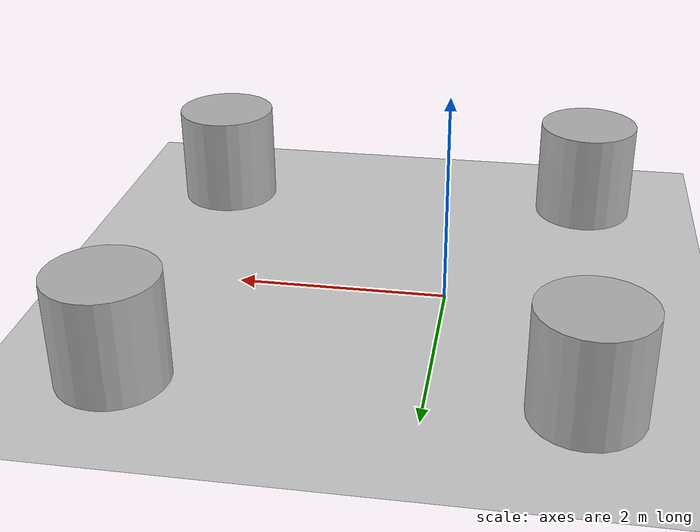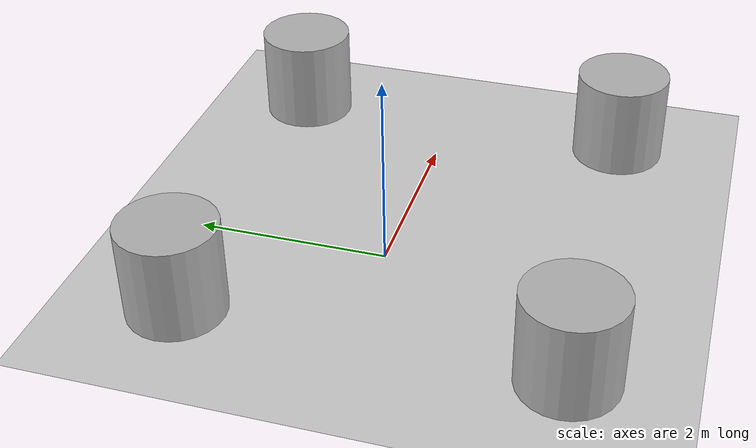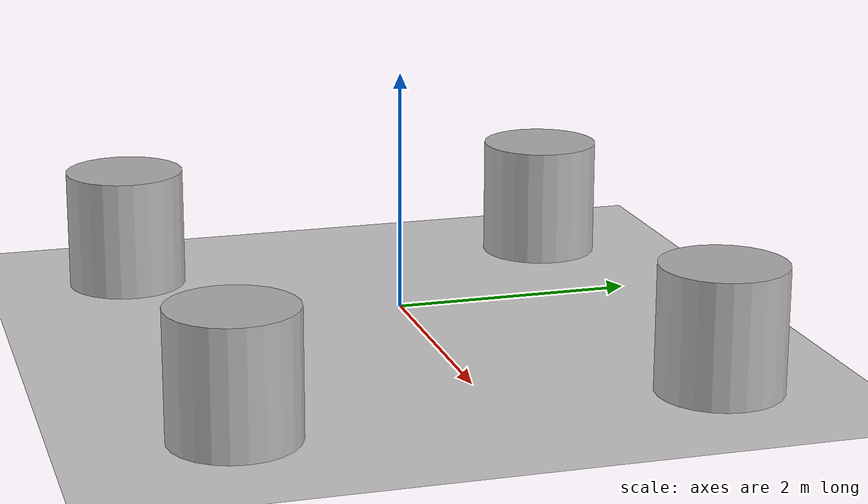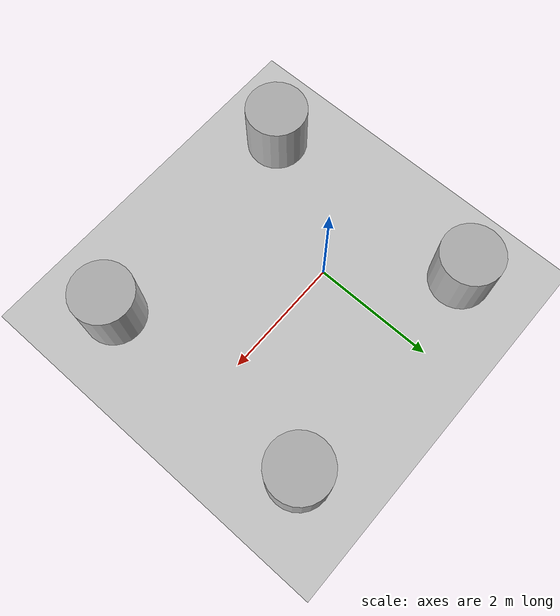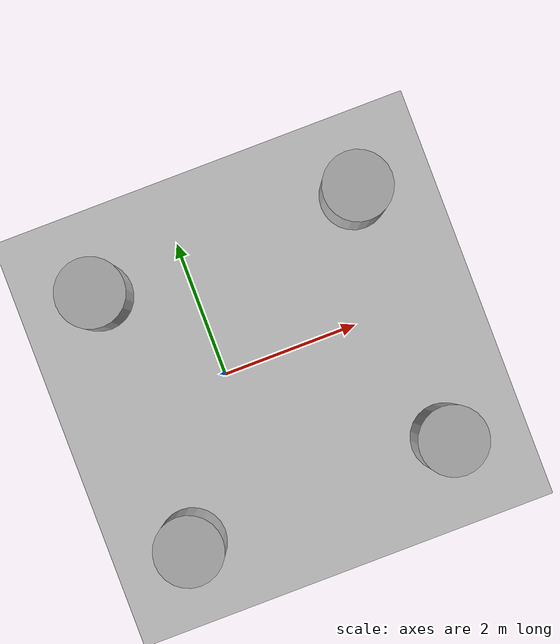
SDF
<sdf version="1.10">
 <world name="empty">
  <physics name="1ms" type="ignored">
   <max_step_size>0.001</max_step_size>
   <real_time_factor>1</real_time_factor>
   <real_time_update_rate>1000</real_time_update_rate>
  </physics>
  <plugin name="gz::sim::systems::Physics" filename="gz-sim-physics-system"/>
  <plugin name="gz::sim::systems::UserCommands" filename="gz-sim-user-commands-system"/>
  <plugin name="gz::sim::systems::SceneBroadcaster" filename="gz-sim-scene-broadcaster-system"/>
  <plugin name="gz::sim::systems::Contact" filename="gz-sim-contact-system"/>
  <plugin name="gz::sim::systems::Sensors" filename="gz-sim-sensors-system">
   <render_engine>ogre2</render_engine>
  </plugin>
  <gravity>0 0 -9.8000000000000007</gravity>
  <magnetic_field>5.5644999999999998e-06 2.2875799999999999e-05 -4.2388400000000002e-05</magnetic_field>
  <atmosphere type="adiabatic"/>
  <scene>
   <ambient>0.400000006 0.400000006 0.400000006 1</ambient>
   <background>0.699999988 0.699999988 0.699999988 1</background>
   <shadows>true</shadows>
  </scene>
  <model name="ground_plane">
   <static>true</static>
   <link name="link">
    <collision name="collision">
     <geometry><plane><normal>0 0 1</normal><size>100 100</size></plane></geometry>
    </collision>
    <visual name="visual">
     <geometry><plane><normal>0 0 1</normal><size>100 100</size></plane></geometry>
     <material>
      <ambient>0.800000012 0.800000012 0.800000012 1</ambient>
      <diffuse>0.800000012 0.800000012 0.800000012 1</diffuse>
      <specular>0.800000012 0.800000012 0.800000012 1</specular>
     </material>
    </visual>
    <inertial>
     <mass>1</mass>
     <inertia><ixx>1</ixx><ixy>0</ixy><ixz>0</ixz><iyy>1</iyy><iyz>0</iyz><izz>1</izz></inertia>
    </inertial>
   </link>
  </model>
  <model name="cylinder">
   <pose>-1.3143800497055054 1.68390953540802 0.49999899681693183 -1.4647114548236344e-19 4.8927672527271982e-19 2.7482656472672057e-20</pose>
   <link name="cylinder_link">
    <inertial>
     <inertia>
      <ixx>0.14580000000000001</ixx>
      <ixy>0</ixy>
      <ixz>0</ixz>
      <iyy>0.14580000000000001</iyy>
      <iyz>0</iyz>
      <izz>0.125</izz>
     </inertia>
     <mass>1</mass>
    </inertial>
    <collision name="cylinder_collision">
     <geometry><cylinder><radius>0.5</radius><length>1</length></cylinder></geometry>
    </collision>
    <visual name="cylinder_visual">
     <geometry><cylinder><radius>0.5</radius><length>1</length></cylinder></geometry>
     <material>
      <ambient>0.300000012 0.300000012 0.300000012 1</ambient>
      <diffuse>0.699999988 0.699999988 0.699999988 1</diffuse>
      <specular>1 1 1 1</specular>
     </material>
    </visual>
   </link>
   <static>false</static>
  </model>
  <model name="cylinder_0">
   <pose>-1.3020790815353394 -2.1059999465942383 0.49999899681693183 8.5976023323048178e-20 1.7141058505088087e-19 2.4993724217911899e-20</pose>
   <link name="cylinder_link">
    <inertial>
     <inertia>
      <ixx>0.14580000000000001</ixx>
      <ixy>0</ixy>
      <ixz>0</ixz>
      <iyy>0.14580000000000001</iyy>
      <iyz>0</iyz>
      <izz>0.125</izz>
     </inertia>
     <mass>1</mass>
    </inertial>
    <collision name="cylinder_collision">
     <geometry><cylinder><radius>0.5</radius><length>1</length></cylinder></geometry>
    </collision>
    <visual name="cylinder_visual">
     <geometry><cylinder><radius>0.5</radius><length>1</length></cylinder></geometry>
     <material>
      <ambient>0.300000012 0.300000012 0.300000012 1</ambient>
      <diffuse>0.699999988 0.699999988 0.699999988 1</diffuse>
      <specular>1 1 1 1</specular>
     </material>
    </visual>
   </link>
   <static>false</static>
  </model>
  <model name="cylinder_1">
   <pose>2.6366313200035503 1.7575104687419332 0.49999942638036005 1.9015373374338568e-19 4.4660916092942015e-19 -1.0489238728132808e-20</pose>
   <link name="cylinder_link">
    <inertial>
     <inertia>
      <ixx>0.14580000000000001</ixx>
      <ixy>0</ixy>
      <ixz>0</ixz>
      <iyy>0.14580000000000001</iyy>
      <iyz>0</iyz>
      <izz>0.125</izz>
     </inertia>
     <mass>1</mass>
    </inertial>
    <collision name="cylinder_collision">
     <geometry><cylinder><radius>0.5</radius><length>1</length></cylinder></geometry>
    </collision>
    <visual name="cylinder_visual">
     <geometry><cylinder><radius>0.5</radius><length>1</length></cylinder></geometry>
     <material>
      <ambient>0.300000012 0.300000012 0.300000012 1</ambient>
      <diffuse>0.699999988 0.699999988 0.699999988 1</diffuse>
      <specular>1 1 1 1</specular>
     </material>
    </visual>
   </link>
   <static>false</static>
  </model>
  <model name="cylinder_2">
   <pose>2.6327057949947523 -1.9734866903547148 0.49999942638036005 2.0497626295744058e-19 1.6559275311145226e-19 -9.9223232214280433e-21</pose>
   <link name="cylinder_link">
    <inertial>
     <inertia>
      <ixx>0.14580000000000001</ixx>
      <ixy>0</ixy>
      <ixz>0</ixz>
      <iyy>0.14580000000000001</iyy>
      <iyz>0</iyz>
      <izz>0.125</izz>
     </inertia>
     <mass>1</mass>
    </inertial>
    <collision name="cylinder_collision">
     <geometry><cylinder><radius>0.5</radius><length>1</length></cylinder></geometry>
    </collision>
    <visual name="cylinder_visual">
     <geometry><cylinder><radius>0.5</radius><length>1</length></cylinder></geometry>
     <material>
      <ambient>0.300000012 0.300000012 0.300000012 1</ambient>
      <diffuse>0.699999988 0.699999988 0.699999988 1</diffuse>
      <specular>1 1 1 1</specular>
     </material>
    </visual>
   </link>
   <static>false</static>
  </model>
  <light name="sun" type="directional">
   <pose>0 0 10 0 0 0</pose>
   <intensity>1</intensity>
   <direction>-0.5 0.10000000000000001 -0.90000000000000002</direction>
   <diffuse>0.800000012 0.800000012 0.800000012 1</diffuse>
   <specular>0.200000003 0.200000003 0.200000003 1</specular>
   <attenuation>
    <range>1000</range>
    <linear>0.01</linear>
    <constant>0.90000000000000002</constant>
    <quadratic>0.001</quadratic>
   </attenuation>
   <spot><inner_angle>0</inner_angle><outer_angle>0</outer_angle><falloff>0</falloff></spot>
  </light>
 </world>
</sdf>
